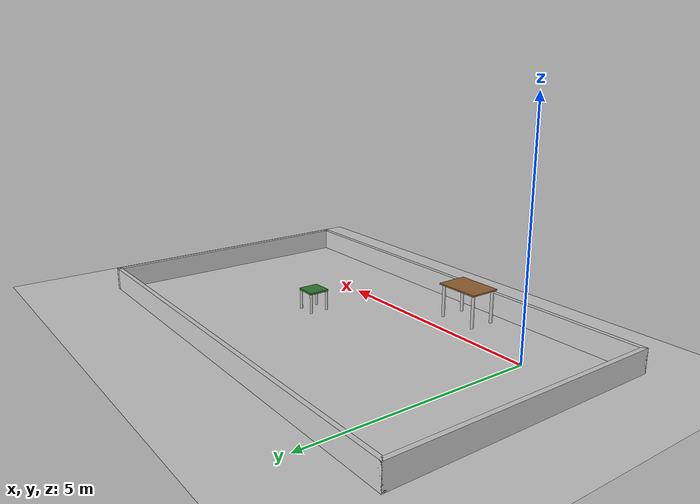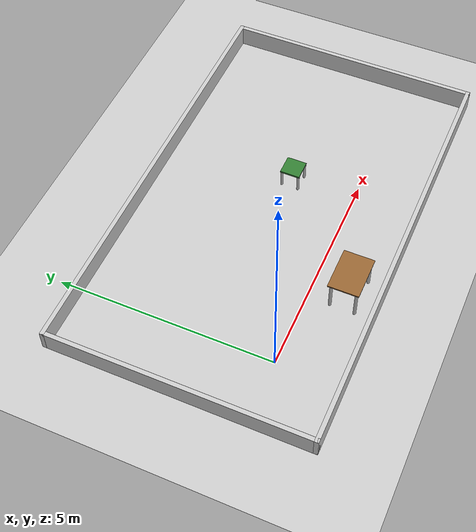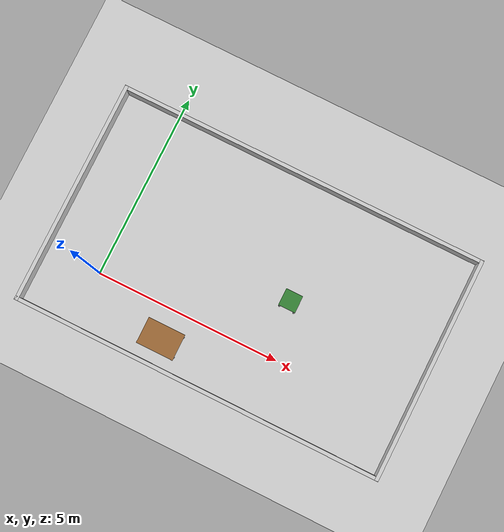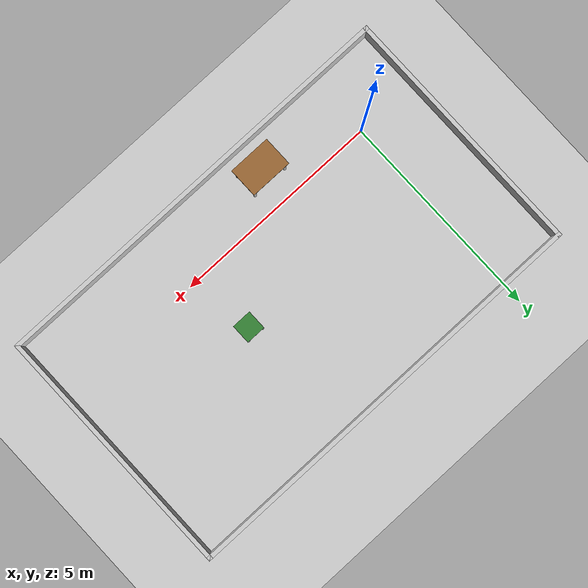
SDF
<?xml version="1.0"?>
<sdf version="1.6">
  <world name="follow_test">
    <include><uri>model://ground_plane</uri></include>
    <include><uri>model://sun</uri></include>

    <scene>
      <shadows>false</shadows>
    </scene>

    <physics type="ode">
      <real_time_update_rate>1000.0</real_time_update_rate>
      <max_step_size>0.001</max_step_size>
      <real_time_factor>1</real_time_factor>
    </physics>

    <plugin name="gazebo_ros_state" filename="libgazebo_ros_state.so">
      <ros>
        <namespace>/gazebo</namespace>
      </ros>
      <update_rate>1.0</update_rate>
    </plugin>

    <gui fullscreen="0">
      <camera name="user_camera">
        <pose>3.5 -5.5 8.0 0 0.95 1.5708</pose>
      </camera>
    </gui>

    <model name="walls">
      <static>true</static>
      <link name="link">
        <collision name="south_collision">
          <pose>3.5 -1.5 0.25 0 0 0</pose>
          <geometry><box><size>10.1 0.1 0.5</size></box></geometry>
        </collision>
        <visual name="south_visual">
          <pose>3.5 -1.5 0.25 0 0 0</pose>
          <geometry><box><size>10.1 0.1 0.5</size></box></geometry>
          <material><ambient>0.7 0.7 0.7 1</ambient><diffuse>0.8 0.8 0.8 1</diffuse></material>
        </visual>
        <collision name="north_collision">
          <pose>3.5 4.5 0.25 0 0 0</pose>
          <geometry><box><size>10.1 0.1 0.5</size></box></geometry>
        </collision>
        <visual name="north_visual">
          <pose>3.5 4.5 0.25 0 0 0</pose>
          <geometry><box><size>10.1 0.1 0.5</size></box></geometry>
          <material><ambient>0.7 0.7 0.7 1</ambient><diffuse>0.8 0.8 0.8 1</diffuse></material>
        </visual>
        <collision name="west_collision">
          <pose>-1.5 1.5 0.25 0 0 0</pose>
          <geometry><box><size>0.1 6.1 0.5</size></box></geometry>
        </collision>
        <visual name="west_visual">
          <pose>-1.5 1.5 0.25 0 0 0</pose>
          <geometry><box><size>0.1 6.1 0.5</size></box></geometry>
          <material><ambient>0.7 0.7 0.7 1</ambient><diffuse>0.8 0.8 0.8 1</diffuse></material>
        </visual>
        <collision name="east_collision">
          <pose>8.5 1.5 0.25 0 0 0</pose>
          <geometry><box><size>0.1 6.1 0.5</size></box></geometry>
        </collision>
        <visual name="east_visual">
          <pose>8.5 1.5 0.25 0 0 0</pose>
          <geometry><box><size>0.1 6.1 0.5</size></box></geometry>
          <material><ambient>0.7 0.7 0.7 1</ambient><diffuse>0.8 0.8 0.8 1</diffuse></material>
        </visual>
      </link>
    </model>

    <!-- Table : plateau à 0,75 m (hors du plan du LiDAR), pieds de 7 cm espacés de plus de 0,45 m -->
    <model name="table">
      <static>true</static>
      <pose>2.2 -0.8 0 0 0 0</pose>
      <link name="link">
        <collision name="top_collision">
          <pose>0 0 0.74 0 0 0</pose>
          <geometry><box><size>1.0 0.7 0.03</size></box></geometry>
        </collision>
        <visual name="top_visual">
          <pose>0 0 0.74 0 0 0</pose>
          <geometry><box><size>1.0 0.7 0.03</size></box></geometry>
          <material><ambient>0.4 0.25 0.1 1</ambient><diffuse>0.6 0.4 0.2 1</diffuse></material>
        </visual>
        <collision name="leg1_collision">
          <pose>0.43 0.28 0.36 0 0 0</pose>
          <geometry><cylinder><radius>0.035</radius><length>0.72</length></cylinder></geometry>
        </collision>
        <visual name="leg1_visual">
          <pose>0.43 0.28 0.36 0 0 0</pose>
          <geometry><cylinder><radius>0.035</radius><length>0.72</length></cylinder></geometry>
        </visual>
        <collision name="leg2_collision">
          <pose>-0.43 0.28 0.36 0 0 0</pose>
          <geometry><cylinder><radius>0.035</radius><length>0.72</length></cylinder></geometry>
        </collision>
        <visual name="leg2_visual">
          <pose>-0.43 0.28 0.36 0 0 0</pose>
          <geometry><cylinder><radius>0.035</radius><length>0.72</length></cylinder></geometry>
        </visual>
        <collision name="leg3_collision">
          <pose>0.43 -0.28 0.36 0 0 0</pose>
          <geometry><cylinder><radius>0.035</radius><length>0.72</length></cylinder></geometry>
        </collision>
        <visual name="leg3_visual">
          <pose>0.43 -0.28 0.36 0 0 0</pose>
          <geometry><cylinder><radius>0.035</radius><length>0.72</length></cylinder></geometry>
        </visual>
        <collision name="leg4_collision">
          <pose>-0.43 -0.28 0.36 0 0 0</pose>
          <geometry><cylinder><radius>0.035</radius><length>0.72</length></cylinder></geometry>
        </collision>
        <visual name="leg4_visual">
          <pose>-0.43 -0.28 0.36 0 0 0</pose>
          <geometry><cylinder><radius>0.035</radius><length>0.72</length></cylinder></geometry>
        </visual>
      </link>
    </model>

    <!-- Chaise : assise à 0,45 m, quatre pieds de 6 cm espacés de 0,4 m -->
    <model name="chair">
      <static>true</static>
      <pose>4.65 1.5 0 0 0 0</pose>
      <link name="link">
        <collision name="seat_collision">
          <pose>0 0 0.45 0 0 0</pose>
          <geometry><box><size>0.46 0.46 0.04</size></box></geometry>
        </collision>
        <visual name="seat_visual">
          <pose>0 0 0.45 0 0 0</pose>
          <geometry><box><size>0.46 0.46 0.04</size></box></geometry>
          <material><ambient>0.1 0.3 0.1 1</ambient><diffuse>0.2 0.5 0.2 1</diffuse></material>
        </visual>
        <collision name="leg1_collision">
          <pose>0.2 0.2 0.22 0 0 0</pose>
          <geometry><cylinder><radius>0.03</radius><length>0.44</length></cylinder></geometry>
        </collision>
        <visual name="leg1_visual">
          <pose>0.2 0.2 0.22 0 0 0</pose>
          <geometry><cylinder><radius>0.03</radius><length>0.44</length></cylinder></geometry>
        </visual>
        <collision name="leg2_collision">
          <pose>-0.2 0.2 0.22 0 0 0</pose>
          <geometry><cylinder><radius>0.03</radius><length>0.44</length></cylinder></geometry>
        </collision>
        <visual name="leg2_visual">
          <pose>-0.2 0.2 0.22 0 0 0</pose>
          <geometry><cylinder><radius>0.03</radius><length>0.44</length></cylinder></geometry>
        </visual>
        <collision name="leg3_collision">
          <pose>0.2 -0.2 0.22 0 0 0</pose>
          <geometry><cylinder><radius>0.03</radius><length>0.44</length></cylinder></geometry>
        </collision>
        <visual name="leg3_visual">
          <pose>0.2 -0.2 0.22 0 0 0</pose>
          <geometry><cylinder><radius>0.03</radius><length>0.44</length></cylinder></geometry>
        </visual>
        <collision name="leg4_collision">
          <pose>-0.2 -0.2 0.22 0 0 0</pose>
          <geometry><cylinder><radius>0.03</radius><length>0.44</length></cylinder></geometry>
        </collision>
        <visual name="leg4_visual">
          <pose>-0.2 -0.2 0.22 0 0 0</pose>
          <geometry><cylinder><radius>0.03</radius><length>0.44</length></cylinder></geometry>
        </visual>
      </link>
    </model>
  </world>
</sdf>
